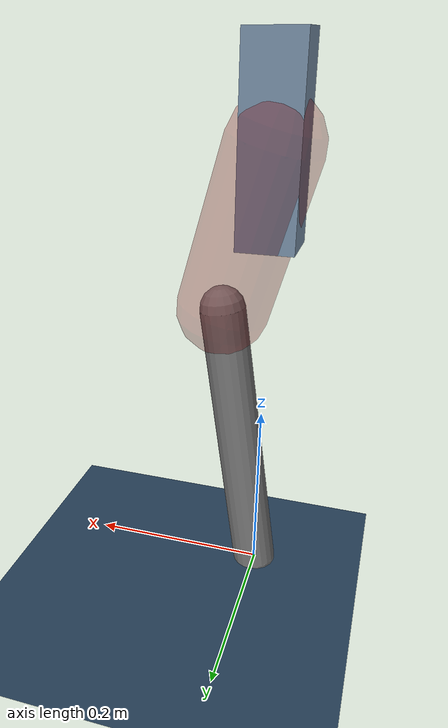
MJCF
<mujoco model="Hopper2D">
	<compiler inertiafromgeom="true" angle="radian" />
	<option timestep="0.001" integrator="implicit" cone="elliptic" solver="Newton" tolerance="1e-10" />

	<default>
		<geom contype="1" conaffinity="1" condim="3" friction="2 0.005 0.0001" solref="0.005 1" />
		<joint limited="true" damping="0.1" />
	</default>

	<asset>
		<texture name="skybox" type="skybox" builtin="gradient" rgb1=".4 .6 .8" rgb2="0 0 0" width="800" height="800" />
		<texture name="grid" type="2d" builtin="checker" rgb1=".1 .2 .3" rgb2=".2 .3 .4" width="300" height="300" mark="edge" markrgb=".2 .3 .4" />
		<material name="ground" texture="grid" texrepeat="1 1" texuniform="true" reflectance="0.1" />
		<material name="leg" rgba="0.5 0.6 0.7 1" />
	</asset>

	<worldbody>

		<geom name="floor" type="plane" size="5 5 0.25" material="ground" />

		<light directional="false" diffuse="0.8 0.8 0.8" specular="0.3 0.3 0.3" pos="0 0 2" dir="0 0 -1" />
		<light mode="targetbodycom" target="base" directional="false" diffuse="0.8 0.8 0.8" specular="0.3 0.3 0.3" pos="0 0 2" dir="0 0 -1" />

		<camera name="fixed" pos="0 -2 1" xyaxes="1 0 0 0 0 1" />
		<camera name="tracking" mode="trackcom" pos="0 -3 1" />

		<body name="root" pos="0 0 0.49192942830463626">
			<joint name="slide_x" type="slide" axis="1 0 0" range="-100 100" />
			<joint name="slide_z" type="slide" axis="0 0 1" range="0 10" />

			<body name="base" pos="0 0 0">
				<geom name="torso" type="box" size="0.03 0.03 0.1" mass="1.3820000000000001" material="leg" />

				<body name="link1" pos="0 0 0" euler="0 1.2991773135366047 0">
					<joint type="hinge" axis="0 -1 0" pos="0 0 0" name="hinge1" limited="true" range="-3.14 3.14" stiffness="0" damping="0.1" />
					<geom name="thigh" type="capsule" fromto="0 0 0 0.17725184359100424 0 0" size="0.05" rgba="0.5 0 0 0.3" mass="0.6738296089775107" />

					<body name="link2" pos="0.17725184359100424 0 0" euler="0 0.4186166890244777 0">
						<joint type="hinge" axis="0 -1 0" pos="0 0 0" name="hinge2" limited="true" range="-3.14 3.14" stiffness="0" damping="0.1" />
						<geom name="shank" type="capsule" fromto="0 0 0 0.324677584713632 0 0" size="0.025" mass="0.5034420677709056" />

					</body>
				</body>
			</body>
		</body>
	</worldbody>

	<actuator>
		<motor name="torque1" joint="hinge1" ctrlrange="-35.380640954206555 35.380640954206555" ctrllimited="true" gear="1" />
		<motor name="torque2" joint="hinge2" ctrlrange="-20.974442283337925 20.974442283337925" ctrllimited="true" gear="1" />
	</actuator>
</mujoco>
